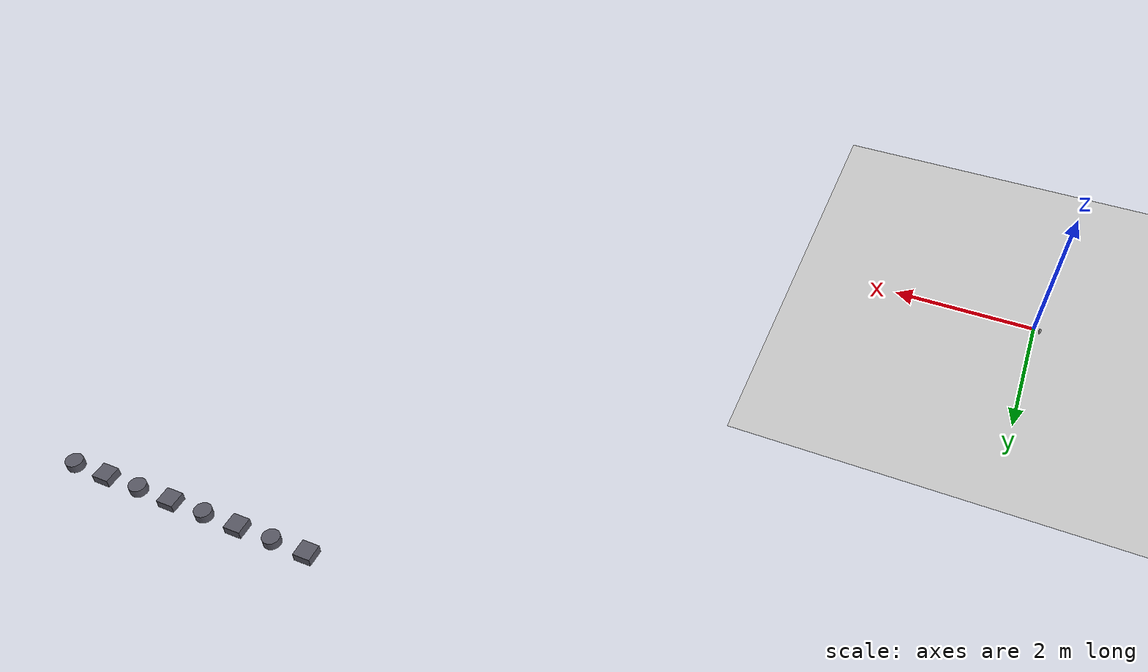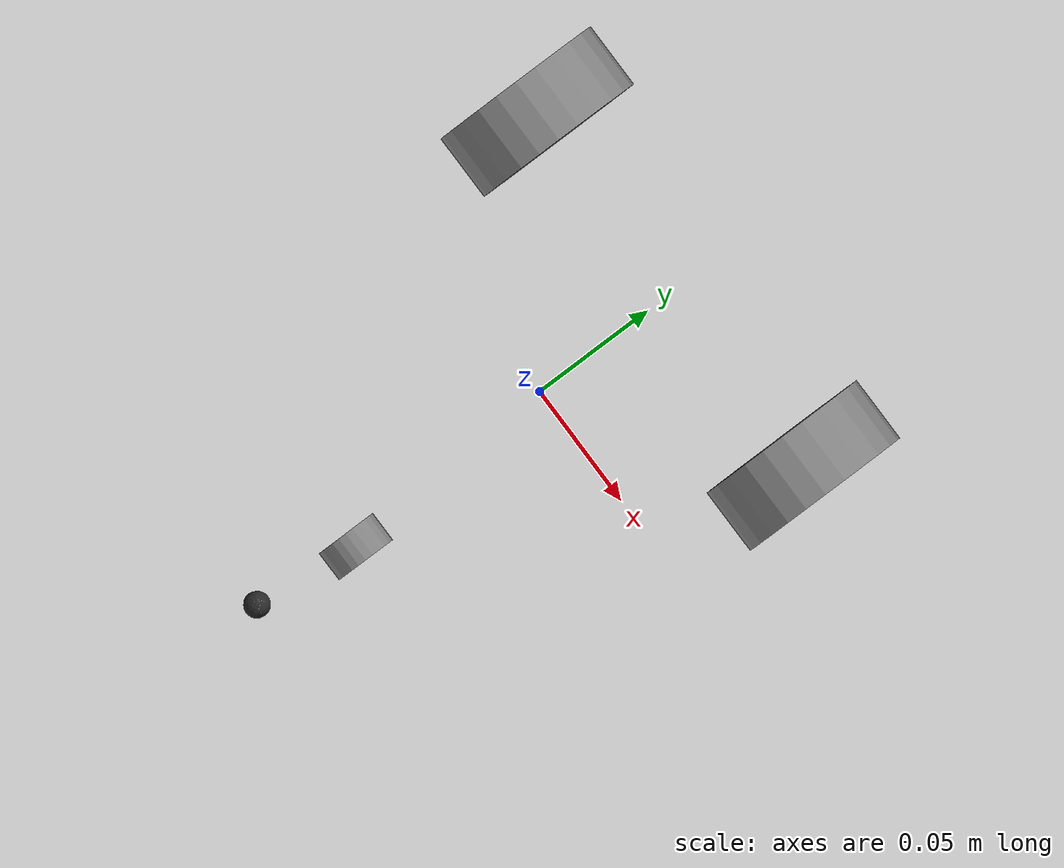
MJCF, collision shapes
<mujoco model="rover_arena_real">
  <!-- Pulls in the rover body/mesh/joint/camera/lidar-site tree compiled from rover.urdf -->
  <include file="rover.xml"/>
  <!-- Walled 5x5 m arena and its obstacle pool (generated by scripts/gen_arena.py) -->
  <include file="../../objects/arena/arena_5x5.xml"/>

  <!-- Implicit integrator: see docs/onshape-to-robot-mjcf.md for why this matters here -->
  <!-- Offscreen framebuffer, only used for top-down renders and debugging; the
       policy's own 64x64 camera needs nothing this large. -->
  <visual>
    <global offwidth="960" offheight="640"/>
  </visual>

  <option integrator="implicitfast"/>

  <asset>
    <texture name="skybox" type="skybox" builtin="gradient"
             rgb1="0.75 0.80 0.86" rgb2="0.55 0.62 0.70" width="256" height="256"/>
  </asset>

  <worldbody>
    <!-- Overhead light so the rover, obstacles and walls are visible in the viewer -->
    <light diffuse=".8 .8 .8" pos="0 0 3" dir="0 0 -1"/>
    <geom name="floor" type="plane" size="3.5 3.5 0.1" rgba=".8 .8 .8 1"/>
  </worldbody>

  <sensor>
    <!-- BEGIN generated lidar sensors (scripts/gen_rover_lidar.py) -->
    <rangefinder name="range_left_0" site="lidar_left_0"/>
    <rangefinder name="range_left_1" site="lidar_left_1"/>
    <rangefinder name="range_left_2" site="lidar_left_2"/>
    <rangefinder name="range_left_3" site="lidar_left_3"/>
    <rangefinder name="range_left_4" site="lidar_left_4"/>
    <rangefinder name="range_center_0" site="lidar_center_0"/>
    <rangefinder name="range_center_1" site="lidar_center_1"/>
    <rangefinder name="range_center_2" site="lidar_center_2"/>
    <rangefinder name="range_center_3" site="lidar_center_3"/>
    <rangefinder name="range_center_4" site="lidar_center_4"/>
    <rangefinder name="range_right_0" site="lidar_right_0"/>
    <rangefinder name="range_right_1" site="lidar_right_1"/>
    <rangefinder name="range_right_2" site="lidar_right_2"/>
    <rangefinder name="range_right_3" site="lidar_right_3"/>
    <rangefinder name="range_right_4" site="lidar_right_4"/>
    <!-- END generated lidar sensors -->
  </sensor>

  <actuator>
    <motor name="left_wheel_motor" joint="left_axle" forcerange="-0.11 0.11"/>
    <motor name="right_wheel_motor" joint="right_axle" forcerange="-0.11 0.11"/>
  </actuator>
</mujoco>

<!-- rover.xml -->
<mujoco model="rover_project">
  <!-- Auto-generated from rover.urdf via mj_saveLastXML; base_link pos/freejoint hand-adjusted, see rover_env.py -->
  <compiler angle="radian"/>

  <!-- STL meshes exported from OnShape by onshape-to-robot, one per rover part -->
  <asset>
    <mesh name="left_motor" content_type="model/stl" file="meshes/left_motor.stl"/>
    <mesh name="base_plate" content_type="model/stl" file="meshes/base_plate.stl"/>
    <mesh name="front_wheel_upper_joint" content_type="model/stl" file="meshes/front_wheel_upper_joint.stl"/>
    <mesh name="front_wheel_bracket" content_type="model/stl" file="meshes/front_wheel_bracket.stl"/>
    <mesh name="left_motor_bracket" content_type="model/stl" file="meshes/left_motor_bracket.stl"/>
    <mesh name="battery" content_type="model/stl" file="meshes/battery.stl"/>
    <mesh name="esp32" content_type="model/stl" file="meshes/esp32.stl"/>
    <mesh name="motor_controller" content_type="model/stl" file="meshes/motor_controller.stl"/>
    <mesh name="right_motor" content_type="model/stl" file="meshes/right_motor.stl"/>
    <mesh name="voltage_regulator" content_type="model/stl" file="meshes/voltage_regulator.stl"/>
    <mesh name="right_motor_bracket" content_type="model/stl" file="meshes/right_motor_bracket.stl"/>
    <mesh name="left_wheel" content_type="model/stl" file="meshes/left_wheel.stl"/>
    <mesh name="right_wheel" content_type="model/stl" file="meshes/right_wheel.stl"/>
    <mesh name="front_wheel_lower_joint" content_type="model/stl" file="meshes/front_wheel_lower_joint.stl"/>
    <mesh name="front_wheel" content_type="model/stl" file="meshes/front_wheel.stl"/>
  </asset>

  <worldbody>
    <!-- Rover chassis: free-floating base (6-DOF) so the whole rover can drive around the world -->
    <body name="base_link" pos="0 0 0.1">
      <inertial pos="-0.00237104 0.0277886 -0.0201836" quat="0.477074 0.524947 -0.508382 0.48824" mass="0.353116" diaginertia="0.00183094 0.00151404 0.000358957"/>
      <joint name="base_floating_joint" type="free"/>
      <camera name="top_cam" pos="0 -0.098 0.07" quat="0 0 0.50000000 0.86602540" fovy="60"/>
      <!-- BEGIN generated lidar sites (scripts/gen_rover_lidar.py) -->
      <site name="lidar_left_0" pos="0 -0.13 -0.06" size="0.005" zaxis="0.216440 -0.976296 0"/>
      <site name="lidar_left_1" pos="0 -0.13 -0.06" size="0.005" zaxis="0.321439 -0.946930 0"/>
      <site name="lidar_left_2" pos="0 -0.13 -0.06" size="0.005" zaxis="0.422618 -0.906308 0"/>
      <site name="lidar_left_3" pos="0 -0.13 -0.06" size="0.005" zaxis="0.518773 -0.854912 0"/>
      <site name="lidar_left_4" pos="0 -0.13 -0.06" size="0.005" zaxis="0.608761 -0.793353 0"/>
      <site name="lidar_center_0" pos="0 -0.13 -0.06" size="0.005" zaxis="-0.216440 -0.976296 0"/>
      <site name="lidar_center_1" pos="0 -0.13 -0.06" size="0.005" zaxis="-0.108867 -0.994056 0"/>
      <site name="lidar_center_2" pos="0 -0.13 -0.06" size="0.005" zaxis="0.000000 -1.000000 0"/>
      <site name="lidar_center_3" pos="0 -0.13 -0.06" size="0.005" zaxis="0.108867 -0.994056 0"/>
      <site name="lidar_center_4" pos="0 -0.13 -0.06" size="0.005" zaxis="0.216440 -0.976296 0"/>
      <site name="lidar_right_0" pos="0 -0.13 -0.06" size="0.005" zaxis="-0.608761 -0.793353 0"/>
      <site name="lidar_right_1" pos="0 -0.13 -0.06" size="0.005" zaxis="-0.518773 -0.854912 0"/>
      <site name="lidar_right_2" pos="0 -0.13 -0.06" size="0.005" zaxis="-0.422618 -0.906308 0"/>
      <site name="lidar_right_3" pos="0 -0.13 -0.06" size="0.005" zaxis="-0.321439 -0.946930 0"/>
      <site name="lidar_right_4" pos="0 -0.13 -0.06" size="0.005" zaxis="-0.216440 -0.976296 0"/>
      <!-- END generated lidar sites -->
      <geom pos="0.0160863 -0.0852797 0.272765" quat="0.707105 0 0.707108 0" type="mesh" contype="0" conaffinity="0" rgba="0.647059 0.647059 0.647059 1" mesh="left_motor"/>
      <geom pos="-0.0886915 -0.18808 -0.0273587" quat="0.707105 0 0 -0.707108" type="mesh" contype="0" conaffinity="0" rgba="0.917647 0.917647 0.917647 1" mesh="base_plate"/>
      <geom pos="-0.473714 0.0946882 -0.0468587" quat="1.76043e-12 1.32679e-06 -1 -1.32679e-06" type="mesh" contype="0" conaffinity="0" rgba="0.498039 0.498039 0.498039 1" mesh="front_wheel_upper_joint"/>
      <geom pos="-0.472714 -0.220152 -0.0468587" quat="1.32679e-06 0 0 -1" type="mesh" contype="0" conaffinity="0" rgba="0.101961 0.101961 0.101961 1" mesh="front_wheel_bracket"/>
      <geom pos="-0.148629 0.205404 -0.0273587" quat="1.32679e-06 1 0 0" type="mesh" contype="0" conaffinity="0" rgba="0.352941 0.34902 0.34902 1" mesh="left_motor_bracket"/>
      <geom pos="-0.124871 0.0875749 -0.0243587" quat="0.707105 0 0 -0.707108" type="mesh" contype="0" conaffinity="0" rgba="0.0117647 0.505882 0.905882 1" mesh="battery"/>
      <geom pos="0.119292 0.0944044 -0.0213587" quat="1 0 0 0" type="mesh" contype="0" conaffinity="0" rgba="0.262745 0.282353 0.301961 1" mesh="esp32"/>
      <geom pos="0.20396 0.300238 -0.0213587" quat="1 0 0 0" type="mesh" contype="0" conaffinity="0" rgba="1 0 0 1" mesh="motor_controller"/>
      <geom pos="-0.0190726 0.115532 0.272765" quat="9.38184e-07 0.707105 9.38187e-07 -0.707108" type="mesh" contype="0" conaffinity="0" rgba="0.647059 0.647059 0.647059 1" mesh="right_motor"/>
      <geom pos="0.26251 0.228404 -0.0213587" quat="1 0 0 0" type="mesh" contype="0" conaffinity="0" rgba="0.0862745 0.317647 0.690196 1" mesh="voltage_regulator"/>
      <geom pos="0.145642 0.00584812 -0.0273587" quat="1.76037e-12 1.32679e-06 -1 -1.32679e-06" type="mesh" contype="0" conaffinity="0" rgba="0.352941 0.34902 0.34902 1" mesh="right_motor_bracket"/>
      <!-- Driven left wheel: hinge joint actuated by the left_wheel_motor in rover_scene.xml -->
      <body name="left_wheel" pos="0.0797863 0.0611262 -0.0504087" quat="0.499998 0.5 -0.500002 -0.5">
        <inertial pos="0 0 -0.01325" quat="0.5 0.5 -0.5 0.5" mass="0.034" diaginertia="2.00404e-05 1.20063e-05 1.20063e-05"/>
        <joint name="left_axle"/>
        <!-- Visual-only detailed mesh (collision handled by the cylinder primitive below) -->
        <geom pos="0.464529 -0.127654 -0.0265" quat="1 0 0 0" type="mesh" contype="0" conaffinity="0" rgba="0.176471 0.654902 0.937255 1" mesh="left_wheel"/>
        <geom type="cylinder" size="0.03435 0.01325" quat="0 0.707107 -0.707107 0"/>
      </body>
      <!-- Driven right wheel: hinge joint actuated by the right_wheel_motor in rover_scene.xml -->
      <body name="right_wheel" pos="-0.0827726 0.0611262 -0.0504087" quat="0.707105 0 0.707108 0">
        <inertial pos="0 0 -0.01325" quat="0.5 0.5 -0.5 0.5" mass="0.034" diaginertia="2.00404e-05 1.20063e-05 1.20063e-05"/>
        <joint name="right_axle"/>
        <!-- Visual-only detailed mesh (collision handled by the cylinder primitive below) -->
        <geom pos="0.464529 -0.0286537 -0.0265" quat="1 0 0 0" type="mesh" contype="0" conaffinity="0" rgba="0.176471 0.654902 0.937255 1" mesh="right_wheel"/>
        <geom type="cylinder" size="0.03435 0.01325" quat="0 0.707107 -0.707107 0"/>
      </body>
      <body name="front_wheel_lower_joint" pos="-0.00149314 -0.0978738 -0.0503587">
        <inertial pos="0 0 0" mass="0.005" diaginertia="4.5e-07 4.5e-07 4.5e-07"/>
        <joint name="front_swivel"/>
        <geom pos="0.343294 -0.190212 0" quat="1.32679e-06 1 0 0" type="mesh" contype="0" conaffinity="0" rgba="0.647059 0.647059 0.647059 1" mesh="front_wheel_lower_joint"/>
        <body name="front_wheel" pos="0.00635 0.00965 -0.0221132" quat="9.38184e-07 -0.707105 -9.38187e-07 -0.707108">
            <inertial pos="0 0 0" mass="0.005" diaginertia="2e-07 2e-07 2e-07"/>
            <joint name="front_axle"/>
          <!-- Visual-only detailed mesh (collision handled by the cylinder primitive below) -->
          <geom pos="0.344734 -0.122278 0" quat="1.32679e-06 1 0 0" type="mesh" contype="0" conaffinity="0" rgba="0.247059 0.247059 0.247059 1" mesh="front_wheel"/>
          <!-- Cylinder collision primitive: radius matches Webots' wider "flange" cylinder.
               quat derived from the mesh's *compiled* geom_quat, same fix as the main wheels above. -->
          <geom type="cylinder" size="0.0123 0.00611" quat="-0.707107 1.41421e-06 -1.41421e-06 -0.707107"/>
        </body>
      </body>
    </body>
  </worldbody>
</mujoco>

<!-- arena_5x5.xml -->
<mujoco model="arena_5x5">
  <worldbody>
    <body name="obstacle_0" mocap="true" pos="7.5 7.5 0.06">
      <geom name="obstacle_0" type="box" group="2" size="0.11499999999999999 0.11499999999999999 0.06" contype="3" conaffinity="3" rgba="0.35 0.35 0.4 1"/>
    </body>
    <body name="obstacle_1" mocap="true" pos="8.0 7.5 0.06">
      <geom name="obstacle_1" type="cylinder" group="2" size="0.11499999999999999 0.06" contype="3" conaffinity="3" rgba="0.35 0.35 0.4 1"/>
    </body>
    <body name="obstacle_2" mocap="true" pos="8.5 7.5 0.06">
      <geom name="obstacle_2" type="box" group="2" size="0.11499999999999999 0.11499999999999999 0.06" contype="3" conaffinity="3" rgba="0.35 0.35 0.4 1"/>
    </body>
    <body name="obstacle_3" mocap="true" pos="9.0 7.5 0.06">
      <geom name="obstacle_3" type="cylinder" group="2" size="0.11499999999999999 0.06" contype="3" conaffinity="3" rgba="0.35 0.35 0.4 1"/>
    </body>
    <body name="obstacle_4" mocap="true" pos="9.5 7.5 0.06">
      <geom name="obstacle_4" type="box" group="2" size="0.11499999999999999 0.11499999999999999 0.06" contype="3" conaffinity="3" rgba="0.35 0.35 0.4 1"/>
    </body>
    <body name="obstacle_5" mocap="true" pos="10.0 7.5 0.06">
      <geom name="obstacle_5" type="cylinder" group="2" size="0.11499999999999999 0.06" contype="3" conaffinity="3" rgba="0.35 0.35 0.4 1"/>
    </body>
    <body name="obstacle_6" mocap="true" pos="10.5 7.5 0.06">
      <geom name="obstacle_6" type="box" group="2" size="0.11499999999999999 0.11499999999999999 0.06" contype="3" conaffinity="3" rgba="0.35 0.35 0.4 1"/>
    </body>
    <body name="obstacle_7" mocap="true" pos="11.0 7.5 0.06">
      <geom name="obstacle_7" type="cylinder" group="2" size="0.11499999999999999 0.06" contype="3" conaffinity="3" rgba="0.35 0.35 0.4 1"/>
    </body>
  </worldbody>
</mujoco>
